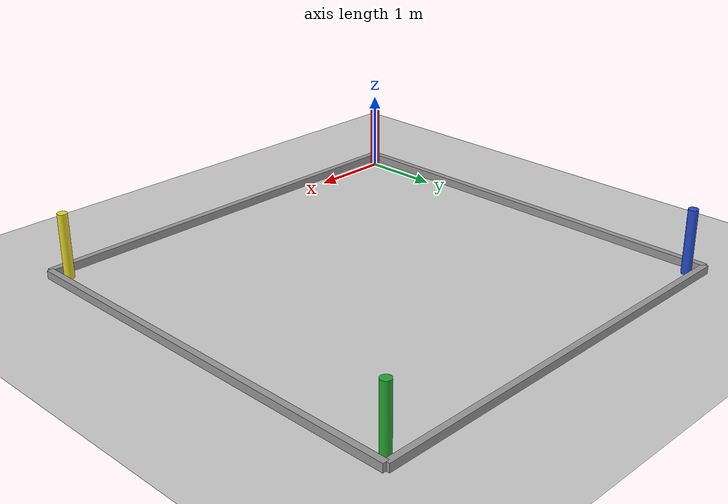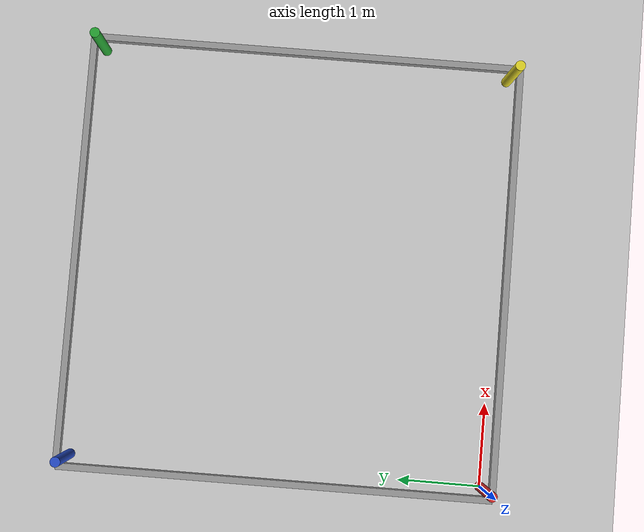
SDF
<?xml version="1.0"?>
<sdf version="1.6">
  <world name="square_path">

    <gravity>0 0 -9.81</gravity>
    <physics name="default" type="ode">
      <max_step_size>0.001</max_step_size>
      <real_time_factor>1.0</real_time_factor>
      <real_time_update_rate>1000</real_time_update_rate>
      <ode>
        <solver><type>quick</type><iters>100</iters><sor>1.3</sor></solver>
        <constraints>
          <cfm>0.0</cfm><erp>0.2</erp>
          <contact_max_correcting_vel>100.0</contact_max_correcting_vel>
          <contact_surface_layer>0.001</contact_surface_layer>
        </constraints>
      </ode>
    </physics>

    <include><uri>model://sun</uri></include>
    <include><uri>model://ground_plane</uri></include>

    <!-- Corner A — START (Red) -->
    <model name="corner_A_red">
      <static>true</static>
      <pose>0 0 0.4 0 0 0</pose>
      <link name="link">
        <visual name="vis">
          <geometry><cylinder><radius>0.06</radius><length>0.8</length></cylinder></geometry>
          <material>
            <script>
              <uri>file://media/materials/scripts/gazebo.material</uri>
              <name>Gazebo/Red</name>
            </script>
          </material>
        </visual>
      </link>
    </model>

    <!-- Corner B (Yellow) -->
    <model name="corner_B_yellow">
      <static>true</static>
      <pose>5 0 0.4 0 0 0</pose>
      <link name="link">
        <visual name="vis">
          <geometry><cylinder><radius>0.06</radius><length>0.8</length></cylinder></geometry>
          <material>
            <script>
              <uri>file://media/materials/scripts/gazebo.material</uri>
              <name>Gazebo/Yellow</name>
            </script>
          </material>
        </visual>
      </link>
    </model>

    <!-- Corner C (Green) -->
    <model name="corner_C_green">
      <static>true</static>
      <pose>5 5 0.4 0 0 0</pose>
      <link name="link">
        <visual name="vis">
          <geometry><cylinder><radius>0.06</radius><length>0.8</length></cylinder></geometry>
          <material>
            <script>
              <uri>file://media/materials/scripts/gazebo.material</uri>
              <name>Gazebo/Green</name>
            </script>
          </material>
        </visual>
      </link>
    </model>

    <!-- Corner D (Blue) -->
    <model name="corner_D_blue">
      <static>true</static>
      <pose>0 5 0.4 0 0 0</pose>
      <link name="link">
        <visual name="vis">
          <geometry><cylinder><radius>0.06</radius><length>0.8</length></cylinder></geometry>
          <material>
            <script>
              <uri>file://media/materials/scripts/gazebo.material</uri>
              <name>Gazebo/Blue</name>
            </script>
          </material>
        </visual>
      </link>
    </model>

    <!-- Low kerb strips along each side — visual only, no collision -->

    <!-- South side  A→B  (y ≈ −0.15, x 0→5) -->
    <model name="kerb_south">
      <static>true</static>
      <pose>2.5 -0.15 0.05 0 0 0</pose>
      <link name="link">
        <visual name="vis">
          <geometry><box><size>5.3 0.08 0.10</size></box></geometry>
          <material>
            <script>
              <uri>file://media/materials/scripts/gazebo.material</uri>
              <name>Gazebo/Grey</name>
            </script>
          </material>
        </visual>
      </link>
    </model>

    <!-- East side  B→C  (x ≈ 5.15, y 0→5) -->
    <model name="kerb_east">
      <static>true</static>
      <pose>5.15 2.5 0.05 0 0 0</pose>
      <link name="link">
        <visual name="vis">
          <geometry><box><size>0.08 5.3 0.10</size></box></geometry>
          <material>
            <script>
              <uri>file://media/materials/scripts/gazebo.material</uri>
              <name>Gazebo/Grey</name>
            </script>
          </material>
        </visual>
      </link>
    </model>

    <!-- North side  C→D  (y ≈ 5.15, x 0→5) -->
    <model name="kerb_north">
      <static>true</static>
      <pose>2.5 5.15 0.05 0 0 0</pose>
      <link name="link">
        <visual name="vis">
          <geometry><box><size>5.3 0.08 0.10</size></box></geometry>
          <material>
            <script>
              <uri>file://media/materials/scripts/gazebo.material</uri>
              <name>Gazebo/Grey</name>
            </script>
          </material>
        </visual>
      </link>
    </model>

    <!-- West side  D→A  (x ≈ −0.15, y 0→5) -->
    <model name="kerb_west">
      <static>true</static>
      <pose>-0.15 2.5 0.05 0 0 0</pose>
      <link name="link">
        <visual name="vis">
          <geometry><box><size>0.08 5.3 0.10</size></box></geometry>
          <material>
            <script>
              <uri>file://media/materials/scripts/gazebo.material</uri>
              <name>Gazebo/Grey</name>
            </script>
          </material>
        </visual>
      </link>
    </model>

  </world>
</sdf>
